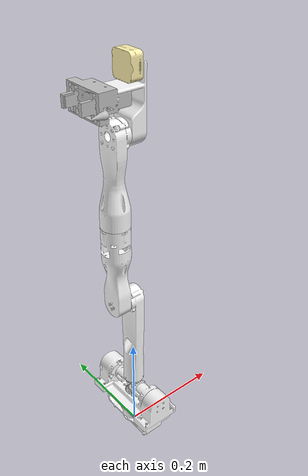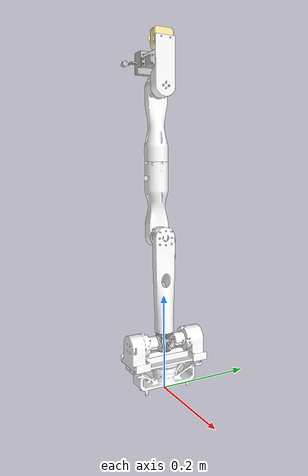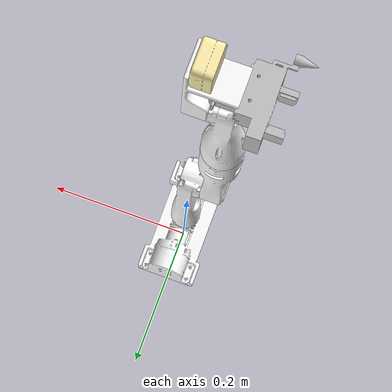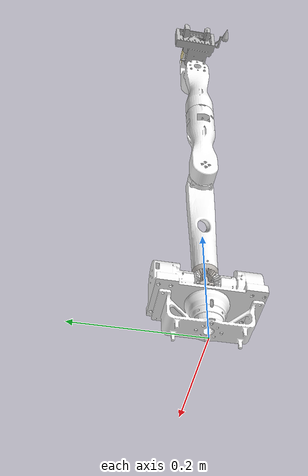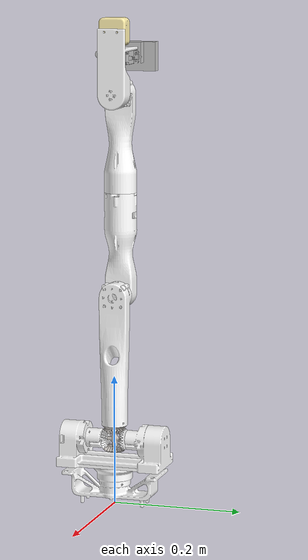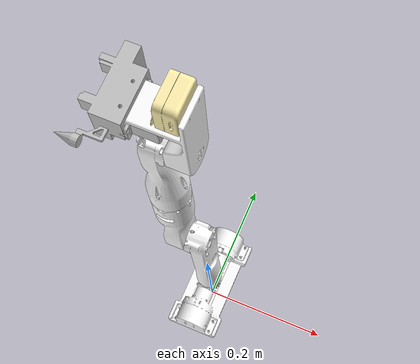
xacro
<?xml version="1.0"?>
<robot xmlns:xacro="http://www.ros.org/wiki/xacro" name="bparm_5_1">
    <xacro:arg name="initial_positions_file" default="initial_positions.yaml" />

    <!-- Import bparm_5_1 urdf file -->
    <xacro:include filename="$(find bparm_5_1_description)/urdf/bparm_5_1_description.urdf" />

    <!-- Import control_xacro -->
    <xacro:include filename="bparm_5_1.ros2_control.xacro" />

    <xacro:bparm_5_1_ros2_control name="FakeSystem" initial_positions_file="$(arg initial_positions_file)"/>

</robot>

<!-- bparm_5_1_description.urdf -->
<robot
  name="bparm_5_1">
  <link
    name="base_link">
    <inertial>
      <origin
        xyz="0.000147714993379983 3.86437548627327E-11 0.0344335444558568"
        rpy="0 0 0" />
      <mass
        value="0.09275682784384" />
      <inertia
        ixx="0.000171517453339657"
        ixy="6.62437339286854E-10"
        ixz="1.19244230968858E-07"
        iyy="3.61830561224153E-05"
        iyz="1.12679946344087E-13"
        izz="0.000179050068336717" />
    </inertial>
    <visual>
      <origin
        xyz="0 0 0"
        rpy="0 0 0" />
      <geometry>
        <mesh
          filename="package://bparm_5_1_description/meshes/base_link.STL" />
      </geometry>
      <material
        name="">
        <color
          rgba="1 1 1 1" />
      </material>
    </visual>
    <collision>
      <origin
        xyz="0 0 0"
        rpy="0 0 0" />
      <geometry>
        <mesh
          filename="package://bparm_5_1_description/meshes/base_link.STL" />
      </geometry>
    </collision>
  </link>
  <link
    name="link1">
    <inertial>
      <origin
        xyz="-3.60001792265585E-09 0.0224429410533554 2.86723154053481E-05"
        rpy="0 0 0" />
      <mass
        value="0.242703771589133" />
      <inertia
        ixx="0.000119094117236868"
        ixy="1.44019124754279E-10"
        ixz="-2.20407452345011E-07"
        iyy="0.000279261953137755"
        iyz="-1.69484268438423E-07"
        izz="0.000242859744665875" />
    </inertial>
    <visual>
      <origin
        xyz="0 0 0"
        rpy="0 0 0" />
      <geometry>
        <mesh
          filename="package://bparm_5_1_description/meshes/link1.STL" />
      </geometry>
      <material
        name="">
        <color
          rgba="1 1 1 1" />
      </material>
    </visual>
    <collision>
      <origin
        xyz="0 0 0"
        rpy="0 0 0" />
      <geometry>
        <mesh
          filename="package://bparm_5_1_description/meshes/link1.STL" />
      </geometry>
    </collision>
  </link>
  <joint
    name="joint1"
    type="revolute">
    <origin
      xyz="0 0 0.0614999999999997"
      rpy="1.5707963267949 0 1.57079630573043" />
    <parent
      link="base_link" />
    <child
      link="link1" />
    <axis
      xyz="0 -1 0" />
    <limit
      lower="-1.8"
      upper="1.8"
      effort="1"
      velocity="1" />
  </joint>
  <link
    name="link2">
    <inertial>
      <origin
        xyz="-0.00682457800243758 -7.51609885440985E-10 3.29678837007741E-08"
        rpy="0 0 0" />
      <mass
        value="0.0145153852066725" />
      <inertia
        ixx="1.87202662285493E-06"
        ixy="-4.29603036576602E-14"
        ixz="-9.92179608420231E-15"
        iyy="1.29106359215905E-06"
        iyz="-3.47348383075651E-13"
        izz="1.23235197527979E-06" />
    </inertial>
    <visual>
      <origin
        xyz="0 0 0"
        rpy="0 0 0" />
      <geometry>
        <mesh
          filename="package://bparm_5_1_description/meshes/link2.STL" />
      </geometry>
      <material
        name="">
        <color
          rgba="0.776470588235294 0.756862745098039 0.737254901960784 1" />
      </material>
    </visual>
    <collision>
      <origin
        xyz="0 0 0"
        rpy="0 0 0" />
      <geometry>
        <mesh
          filename="package://bparm_5_1_description/meshes/link2.STL" />
      </geometry>
    </collision>
  </link>
  <joint
    name="joint2"
    type="revolute">
    <origin
      xyz="0 0.04 0"
      rpy="-1.57079634785937 0 -1.5707963267949" />
    <parent
      link="link1" />
    <child
      link="link2" />
    <axis
      xyz="0 0 1" />
    <limit
      lower="-1.8"
      upper="1.8"
      effort="1"
      velocity="1" />
  </joint>
  <link
    name="link3">
    <inertial>
      <origin
        xyz="-2.12079369469875E-05 0.100464889655343 -0.000408315812513715"
        rpy="0 0 0" />
      <mass
        value="0.191360304125798" />
      <inertia
        ixx="0.000620746471029824"
        ixy="4.73465457580558E-07"
        ixz="2.33932262032956E-08"
        iyy="3.89402242446652E-05"
        iyz="-1.62966617576368E-06"
        izz="0.000636034292716962" />
    </inertial>
    <visual>
      <origin
        xyz="0 0 0"
        rpy="0 0 0" />
      <geometry>
        <mesh
          filename="package://bparm_5_1_description/meshes/link3.STL" />
      </geometry>
      <material
        name="">
        <color
          rgba="1 1 1 1" />
      </material>
    </visual>
    <collision>
      <origin
        xyz="0 0 0"
        rpy="0 0 0" />
      <geometry>
        <mesh
          filename="package://bparm_5_1_description/meshes/link3.STL" />
      </geometry>
    </collision>
  </link>
  <joint
    name="joint3"
    type="revolute">
    <origin
      xyz="-0.0225398298614661 0 0"
      rpy="1.5707963267949 -1.5707963267949 0" />
    <parent
      link="link2" />
    <child
      link="link3" />
    <axis
      xyz="0 -1 0" />
    <limit
      lower="-1.8"
      upper="1.8"
      effort="1"
      velocity="1" />
  </joint>
  <link
    name="link4">
    <inertial>
      <origin
        xyz="5.4169476120941E-05 0.0711418303491069 -0.0139420842352693"
        rpy="0 0 0" />
      <mass
        value="0.165671646930781" />
      <inertia
        ixx="0.000168868249508342"
        ixy="-2.69469642449062E-08"
        ixz="4.05097447871256E-08"
        iyy="4.69717097850837E-05"
        iyz="-1.03327826883113E-06"
        izz="0.000175146940963635" />
    </inertial>
    <visual>
      <origin
        xyz="0 0 0"
        rpy="0 0 0" />
      <geometry>
        <mesh
          filename="package://bparm_5_1_description/meshes/link4.STL" />
      </geometry>
      <material
        name="">
        <color
          rgba="1 1 1 1" />
      </material>
    </visual>
    <collision>
      <origin
        xyz="0 0 0"
        rpy="0 0 0" />
      <geometry>
        <mesh
          filename="package://bparm_5_1_description/meshes/link4.STL" />
      </geometry>
    </collision>
  </link>
  <joint
    name="joint4"
    type="revolute">
    <origin
      xyz="0 0.2 -0.0190000000000045"
      rpy="0 0 0" />
    <parent
      link="link3" />
    <child
      link="link4" />
    <axis
      xyz="0 0 -1" />
    <limit
      lower="-2.35"
      upper="2.35"
      effort="1"
      velocity="1" />
  </joint>
  <link
    name="link5">
    <inertial>
      <origin
        xyz="6.80793618007547E-07 0.040464603044332 0.000591187634898072"
        rpy="0 0 0" />
      <mass
        value="0.164695579944042" />
      <inertia
        ixx="0.000192367151187575"
        ixy="-2.69244029869537E-07"
        ixz="1.70687310964095E-08"
        iyy="4.09586796976324E-05"
        iyz="1.24434581079354E-06"
        izz="0.000199970106498001" />
    </inertial>
    <visual>
      <origin
        xyz="0 0 0"
        rpy="0 0 0" />
      <geometry>
        <mesh
          filename="package://bparm_5_1_description/meshes/link5.STL" />
      </geometry>
      <material
        name="">
        <color
          rgba="1 1 1 1" />
      </material>
    </visual>
    <collision>
      <origin
        xyz="0 0 0"
        rpy="0 0 0" />
      <geometry>
        <mesh
          filename="package://bparm_5_1_description/meshes/link5.STL" />
      </geometry>
    </collision>
  </link>
  <joint
    name="joint5"
    type="revolute">
    <origin
      xyz="0 0.188 -0.014"
      rpy="0 0 0" />
    <parent
      link="link4" />
    <child
      link="link5" />
    <axis
      xyz="0 -1 0" />
    <limit
      lower="-1.8"
      upper="1.8"
      effort="1"
      velocity="1" />
  </joint>
  <link
    name="link6">
    <inertial>
      <origin
        xyz="0.0336178760368403 -0.0152798218033703 -2.9261767678368E-07"
        rpy="0 0 0" />
      <mass
        value="0.0706761356774253" />
      <inertia
        ixx="2.90112639724966E-05"
        ixy="6.50721999236753E-06"
        ixz="-4.21821952775762E-10"
        iyy="8.11759956239221E-05"
        iyz="-4.13421649699637E-10"
        izz="8.55719171336377E-05" />
    </inertial>
    <visual>
      <origin
        xyz="0 0 0"
        rpy="0 0 0" />
      <geometry>
        <mesh
          filename="package://bparm_5_1_description/meshes/link6.STL" />
      </geometry>
      <material
        name="">
        <color
          rgba="1 1 1 1" />
      </material>
    </visual>
    <collision>
      <origin
        xyz="0 0 0"
        rpy="0 0 0" />
      <geometry>
        <mesh
          filename="package://bparm_5_1_description/meshes/link6.STL" />
      </geometry>
    </collision>
  </link>
  <joint
    name="joint6"
    type="revolute">
    <origin
      xyz="0 0.122 0.0465"
      rpy="1.5708 0 1.5708" />
    <parent
      link="link5" />
    <child
      link="link6" />
    <axis
      xyz="0 -1 0" />
    <limit
      lower="-2.35"
      upper="2.35"
      effort="1"
      velocity="1" />
  </joint>
  <link
    name="linkCamera">
    <inertial>
      <origin
        xyz="-7.89823422421149E-05 8.5034083425084E-05 -0.0113644630680405"
        rpy="0 0 0" />
      <mass
        value="1.07678808685044" />
      <inertia
        ixx="0.000197188419732538"
        ixy="-1.12309543914858E-08"
        ixz="-4.1690465254123E-07"
        iyy="0.000197433047359348"
        iyz="2.96522504119722E-07"
        izz="0.000301366659761361" />
    </inertial>
    <visual>
      <origin
        xyz="0 0 0"
        rpy="0 0 0" />
      <geometry>
        <mesh
          filename="package://bparm_5_1_description/meshes/linkCamera.STL" />
      </geometry>
      <material
        name="">
        <color
          rgba="1 0.941176470588235 0.67843137254902 1" />
      </material>
    </visual>
    <collision>
      <origin
        xyz="0 0 0"
        rpy="0 0 0" />
      <geometry>
        <mesh
          filename="package://bparm_5_1_description/meshes/linkCamera.STL" />
      </geometry>
    </collision>
  </link>
  <gazebo reference="linkCamera">
    <sensor name="camera_sensor" type="camera">
      <pose>0 0 0 0 0 0</pose> <!-- relative to linkCamera -->
      <camera>
        <horizontal_fov>1.3962634</horizontal_fov> <!-- 80 degrees -->
        <image>
          <width>640</width>
          <height>480</height>
          <format>R8G8B8</format>
        </image>
        <clip>
          <near>0.1</near>
          <far>100</far>
        </clip>
      </camera>
      <always_on>true</always_on>
      <update_rate>30</update_rate>
      <visualize>true</visualize>
      <plugin name="camera_controller" filename="libgazebo_ros_camera.so">
        <ros>
          <namespace>/camera</namespace>
        </ros>
        <camera_name>camera</camera_name>
        <image_topic_name>image_raw</image_topic_name>
        <camera_info_topic_name>camera_info</camera_info_topic_name>
        <frame_name>linkCamera</frame_name>
      </plugin>
    </sensor>
  </gazebo>
  <joint
    name="jointCamera"
    type="fixed">
    <origin
      xyz="0.095 -0.028 0"
      rpy="1.5708 1.5708 0" />
    <parent
      link="link6" />
    <child
      link="linkCamera" />
    <axis
      xyz="0 0 0" />
  </joint>
  <link
    name="linkGripper">
    <inertial>
      <origin
        xyz="-0.000629194753795748 -0.0571025904165044 0.0513770429505706"
        rpy="0 0 0" />
      <mass
        value="0.113939986237523" />
      <inertia
        ixx="3.98127746222516E-05"
        ixy="-1.19188958861041E-06"
        ixz="-3.01428896460108E-07"
        iyy="4.3563309926854E-05"
        iyz="1.25186187910718E-06"
        izz="1.45864743052104E-05" />
    </inertial>
    <visual>
      <origin
        xyz="0 0 0"
        rpy="0 0 0" />
      <geometry>
        <mesh
          filename="package://bparm_5_1_description/meshes/linkGripper.STL" />
      </geometry>
      <material
        name="">
        <color
          rgba="0.752941176470588 0.752941176470588 0.752941176470588 1" />
      </material>
    </visual>
    <collision>
      <origin
        xyz="0 0 0"
        rpy="0 0 0" />
      <geometry>
        <mesh
          filename="package://bparm_5_1_description/meshes/linkGripper.STL" />
      </geometry>
    </collision>
  </link>
  <joint
    name="jointGripper"
    type="fixed">
    <origin
      xyz="0.054633 -0.11705 -0.049298"
      rpy="0 -0.0087266 3.1416" />
    <parent
      link="link6" />
    <child
      link="linkGripper" />
    <axis
      xyz="0 0 0" />
  </joint>
</robot>
